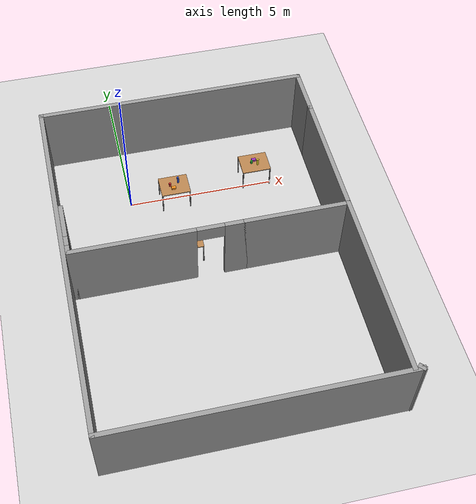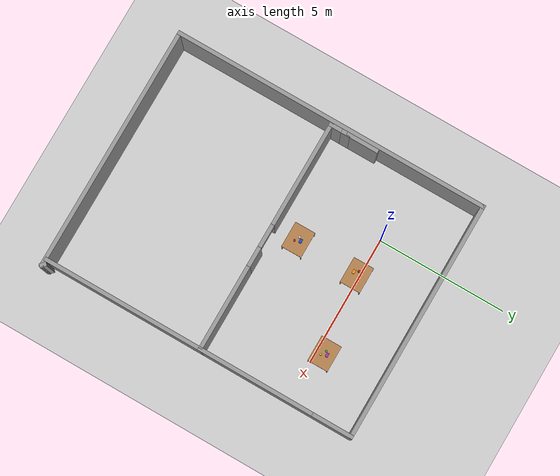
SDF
<sdf version="1.7">
 <world name="default">
  <light name="sun" type="directional">
   <pose>0 0 10 0 -0 0</pose>
   <diffuse>0.8 0.8 0.8 1</diffuse>
   <specular>0.2 0.2 0.2 1</specular>
   <attenuation>
    <range>1000</range>
    <constant>0.9</constant>
    <linear>0.01</linear>
    <quadratic>0.001</quadratic>
   </attenuation>
   <direction>-0.5 0.1 -0.9</direction>
   <spot><inner_angle>0</inner_angle><outer_angle>0</outer_angle><falloff>0</falloff></spot>
  </light>
  <model name="ground_plane">
   <static>1</static>
   <link name="link">
    <collision name="collision">
     <geometry><plane><normal>0 0 1</normal><size>100 100</size></plane></geometry>
     <surface><friction><ode><mu>100</mu><mu2>50</mu2></ode></friction></surface>
    </collision>
    <visual name="visual">
     <cast_shadows>0</cast_shadows>
     <geometry><plane><normal>0 0 1</normal><size>100 100</size></plane></geometry>
     <material>
      <script><uri>file://media/materials/scripts/gazebo.material</uri><name>Gazebo/Grey</name></script>
     </material>
    </visual>
   </link>
  </model>
  <gravity>0 0 -9.8</gravity>
  <magnetic_field>6e-06 2.3e-05 -4.2e-05</magnetic_field>
  <atmosphere type="adiabatic"/>
  <physics type="ode">
   <max_step_size>0.001</max_step_size>
   <real_time_factor>1</real_time_factor>
   <real_time_update_rate>1000</real_time_update_rate>
  </physics>
  <scene><ambient>0.4 0.4 0.4 1</ambient><background>0.7 0.7 0.7 1</background><shadows>1</shadows></scene>
  <audio><device>default</device></audio>
  <spherical_coordinates>
   <surface_model>EARTH_WGS84</surface_model>
   <latitude_deg>0</latitude_deg>
   <longitude_deg>0</longitude_deg>
   <elevation>0</elevation>
   <heading_deg>0</heading_deg>
  </spherical_coordinates>
  <model name="table">
   <static>1</static>
   <link name="link">
    <collision name="surface">
     <pose>0 0 0.8 0 -0 0</pose>
     <geometry><box><size>1 0.8 0.03</size></box></geometry>
    </collision>
    <visual name="visual1">
     <pose>0 0 0.8 0 -0 0</pose>
     <geometry><box><size>1 0.8 0.03</size></box></geometry>
     <material>
      <script><uri>file://media/materials/scripts/gazebo.material</uri><name>Gazebo/Wood</name></script>
     </material>
    </visual>
    <collision name="front_left_leg">
     <pose>0.48 0.38 0.4 0 -0 0</pose>
     <geometry><cylinder><radius>0.02</radius><length>0.8</length></cylinder></geometry>
    </collision>
    <visual name="front_left_leg">
     <pose>0.48 0.38 0.4 0 -0 0</pose>
     <geometry><cylinder><radius>0.02</radius><length>0.8</length></cylinder></geometry>
     <material>
      <script><uri>file://media/materials/scripts/gazebo.material</uri><name>Gazebo/Grey</name></script>
     </material>
    </visual>
    <collision name="front_right_leg">
     <pose>0.48 -0.38 0.4 0 -0 0</pose>
     <geometry><cylinder><radius>0.02</radius><length>0.8</length></cylinder></geometry>
    </collision>
    <visual name="front_right_leg">
     <pose>0.48 -0.38 0.4 0 -0 0</pose>
     <geometry><cylinder><radius>0.02</radius><length>0.8</length></cylinder></geometry>
     <material>
      <script><uri>file://media/materials/scripts/gazebo.material</uri><name>Gazebo/Grey</name></script>
     </material>
    </visual>
    <collision name="back_right_leg">
     <pose>-0.48 -0.38 0.4 0 -0 0</pose>
     <geometry><cylinder><radius>0.02</radius><length>0.8</length></cylinder></geometry>
    </collision>
    <visual name="back_right_leg">
     <pose>-0.48 -0.38 0.4 0 -0 0</pose>
     <geometry><cylinder><radius>0.02</radius><length>0.8</length></cylinder></geometry>
     <material>
      <script><uri>file://media/materials/scripts/gazebo.material</uri><name>Gazebo/Grey</name></script>
     </material>
    </visual>
    <collision name="back_left_leg">
     <pose>-0.48 0.38 0.4 0 -0 0</pose>
     <geometry><cylinder><radius>0.02</radius><length>0.8</length></cylinder></geometry>
    </collision>
    <visual name="back_left_leg">
     <pose>-0.48 0.38 0.4 0 -0 0</pose>
     <geometry><cylinder><radius>0.02</radius><length>0.8</length></cylinder></geometry>
     <material>
      <script><uri>file://media/materials/scripts/gazebo.material</uri><name>Gazebo/Grey</name></script>
     </material>
    </visual>
    <velocity_decay><linear>0</linear><angular>0</angular></velocity_decay>
   </link>
   <pose>1.54752 -0.097405 0 0 -0 0</pose>
  </model>
  <model name="table2">
   <static>1</static>
   <link name="link">
    <collision name="surface">
     <pose>0 0 0.8 0 -0 0</pose>
     <geometry><box><size>1 0.8 0.03</size></box></geometry>
    </collision>
    <visual name="visual1">
     <pose>0 0 0.8 0 -0 0</pose>
     <geometry><box><size>1 0.8 0.03</size></box></geometry>
     <material>
      <script><uri>file://media/materials/scripts/gazebo.material</uri><name>Gazebo/Wood</name></script>
     </material>
    </visual>
    <collision name="leg_fl">
     <pose>0.48 0.38 0.4 0 -0 0</pose>
     <geometry><cylinder><radius>0.02</radius><length>0.8</length></cylinder></geometry>
    </collision>
    <visual name="leg_fl">
     <pose>0.48 0.38 0.4 0 -0 0</pose>
     <geometry><cylinder><radius>0.02</radius><length>0.8</length></cylinder></geometry>
     <material>
      <script><uri>file://media/materials/scripts/gazebo.material</uri><name>Gazebo/Grey</name></script>
     </material>
    </visual>
    <collision name="leg_fr">
     <pose>0.48 -0.38 0.4 0 -0 0</pose>
     <geometry><cylinder><radius>0.02</radius><length>0.8</length></cylinder></geometry>
    </collision>
    <visual name="leg_fr">
     <pose>0.48 -0.38 0.4 0 -0 0</pose>
     <geometry><cylinder><radius>0.02</radius><length>0.8</length></cylinder></geometry>
     <material>
      <script><uri>file://media/materials/scripts/gazebo.material</uri><name>Gazebo/Grey</name></script>
     </material>
    </visual>
    <collision name="leg_bl">
     <pose>-0.48 0.38 0.4 0 -0 0</pose>
     <geometry><cylinder><radius>0.02</radius><length>0.8</length></cylinder></geometry>
    </collision>
    <visual name="leg_bl">
     <pose>-0.48 0.38 0.4 0 -0 0</pose>
     <geometry><cylinder><radius>0.02</radius><length>0.8</length></cylinder></geometry>
     <material>
      <script><uri>file://media/materials/scripts/gazebo.material</uri><name>Gazebo/Grey</name></script>
     </material>
    </visual>
    <collision name="leg_br">
     <pose>-0.48 -0.38 0.4 0 -0 0</pose>
     <geometry><cylinder><radius>0.02</radius><length>0.8</length></cylinder></geometry>
    </collision>
    <visual name="leg_br">
     <pose>-0.48 -0.38 0.4 0 -0 0</pose>
     <geometry><cylinder><radius>0.02</radius><length>0.8</length></cylinder></geometry>
     <material>
      <script><uri>file://media/materials/scripts/gazebo.material</uri><name>Gazebo/Grey</name></script>
     </material>
    </visual>
   </link>
   <pose>4.5 0.3 0 0 -0 0</pose>
  </model>
  <model name="table3">
   <static>1</static>
   <link name="link">
    <collision name="surface">
     <pose>0 0 0.8 0 -0 0</pose>
     <geometry><box><size>1 0.8 0.03</size></box></geometry>
    </collision>
    <visual name="visual1">
     <pose>0 0 0.8 0 -0 0</pose>
     <geometry><box><size>1 0.8 0.03</size></box></geometry>
     <material>
      <script><uri>file://media/materials/scripts/gazebo.material</uri><name>Gazebo/Wood</name></script>
     </material>
    </visual>
    <collision name="leg_fl">
     <pose>0.48 0.38 0.4 0 -0 0</pose>
     <geometry><cylinder><radius>0.02</radius><length>0.8</length></cylinder></geometry>
    </collision>
    <visual name="leg_fl">
     <pose>0.48 0.38 0.4 0 -0 0</pose>
     <geometry><cylinder><radius>0.02</radius><length>0.8</length></cylinder></geometry>
     <material>
      <script><uri>file://media/materials/scripts/gazebo.material</uri><name>Gazebo/Grey</name></script>
     </material>
    </visual>
    <collision name="leg_fr">
     <pose>0.48 -0.38 0.4 0 -0 0</pose>
     <geometry><cylinder><radius>0.02</radius><length>0.8</length></cylinder></geometry>
    </collision>
    <visual name="leg_fr">
     <pose>0.48 -0.38 0.4 0 -0 0</pose>
     <geometry><cylinder><radius>0.02</radius><length>0.8</length></cylinder></geometry>
     <material>
      <script><uri>file://media/materials/scripts/gazebo.material</uri><name>Gazebo/Grey</name></script>
     </material>
    </visual>
    <collision name="leg_bl">
     <pose>-0.48 0.38 0.4 0 -0 0</pose>
     <geometry><cylinder><radius>0.02</radius><length>0.8</length></cylinder></geometry>
    </collision>
    <visual name="leg_bl">
     <pose>-0.48 0.38 0.4 0 -0 0</pose>
     <geometry><cylinder><radius>0.02</radius><length>0.8</length></cylinder></geometry>
     <material>
      <script><uri>file://media/materials/scripts/gazebo.material</uri><name>Gazebo/Grey</name></script>
     </material>
    </visual>
    <collision name="leg_br">
     <pose>-0.48 -0.38 0.4 0 -0 0</pose>
     <geometry><cylinder><radius>0.02</radius><length>0.8</length></cylinder></geometry>
    </collision>
    <visual name="leg_br">
     <pose>-0.48 -0.38 0.4 0 -0 0</pose>
     <geometry><cylinder><radius>0.02</radius><length>0.8</length></cylinder></geometry>
     <material>
      <script><uri>file://media/materials/scripts/gazebo.material</uri><name>Gazebo/Grey</name></script>
     </material>
    </visual>
   </link>
   <pose>1.5 -2.5 0 0 -0 0</pose>
  </model>
  <model name="cup_t1">
   <static>1</static>
   <link name="link">
    <collision name="col">
     <geometry><cylinder><radius>0.04</radius><length>0.12</length></cylinder></geometry>
    </collision>
    <visual name="vis">
     <geometry><cylinder><radius>0.04</radius><length>0.12</length></cylinder></geometry>
     <material>
      <script><uri>file://media/materials/scripts/gazebo.material</uri><name>Gazebo/Red</name></script>
     </material>
    </visual>
   </link>
   <pose>1.4 -0.1 0.875 0 -0 0</pose>
  </model>
  <model name="bottle_t1">
   <static>1</static>
   <link name="link">
    <collision name="col">
     <geometry><cylinder><radius>0.035</radius><length>0.25</length></cylinder></geometry>
    </collision>
    <visual name="vis">
     <geometry><cylinder><radius>0.035</radius><length>0.25</length></cylinder></geometry>
     <material>
      <script><uri>file://media/materials/scripts/gazebo.material</uri><name>Gazebo/Blue</name></script>
     </material>
    </visual>
   </link>
   <pose>1.7 0.0 0.94 0 -0 0</pose>
  </model>
  <model name="box_t1">
   <static>1</static>
   <link name="link">
    <collision name="col"><geometry><box><size>0.15 0.1 0.08</size></box></geometry></collision>
    <visual name="vis">
     <geometry><box><size>0.15 0.1 0.08</size></box></geometry>
     <material>
      <script><uri>file://media/materials/scripts/gazebo.material</uri><name>Gazebo/Orange</name></script>
     </material>
    </visual>
   </link>
   <pose>1.5 -0.25 0.855 0 -0 0</pose>
  </model>
  <model name="cup_t2">
   <static>1</static>
   <link name="link">
    <collision name="col">
     <geometry><cylinder><radius>0.04</radius><length>0.12</length></cylinder></geometry>
    </collision>
    <visual name="vis">
     <geometry><cylinder><radius>0.04</radius><length>0.12</length></cylinder></geometry>
     <material>
      <script><uri>file://media/materials/scripts/gazebo.material</uri><name>Gazebo/Green</name></script>
     </material>
    </visual>
   </link>
   <pose>4.4 0.3 0.875 0 -0 0</pose>
  </model>
  <model name="bottle_t2">
   <static>1</static>
   <link name="link">
    <collision name="col">
     <geometry><cylinder><radius>0.035</radius><length>0.25</length></cylinder></geometry>
    </collision>
    <visual name="vis">
     <geometry><cylinder><radius>0.035</radius><length>0.25</length></cylinder></geometry>
     <material>
      <script><uri>file://media/materials/scripts/gazebo.material</uri><name>Gazebo/Yellow</name></script>
     </material>
    </visual>
   </link>
   <pose>4.6 0.2 0.94 0 -0 0</pose>
  </model>
  <model name="box_t2">
   <static>1</static>
   <link name="link">
    <collision name="col"><geometry><box><size>0.15 0.1 0.08</size></box></geometry></collision>
    <visual name="vis">
     <geometry><box><size>0.15 0.1 0.08</size></box></geometry>
     <material>
      <script><uri>file://media/materials/scripts/gazebo.material</uri><name>Gazebo/Purple</name></script>
     </material>
    </visual>
   </link>
   <pose>4.5 0.4 0.855 0 -0 0</pose>
  </model>
  <model name="cup_t3">
   <static>1</static>
   <link name="link">
    <collision name="col">
     <geometry><cylinder><radius>0.04</radius><length>0.12</length></cylinder></geometry>
    </collision>
    <visual name="vis">
     <geometry><cylinder><radius>0.04</radius><length>0.12</length></cylinder></geometry>
     <material>
      <script><uri>file://media/materials/scripts/gazebo.material</uri><name>Gazebo/White</name></script>
     </material>
    </visual>
   </link>
   <pose>1.4 -2.5 0.875 0 -0 0</pose>
  </model>
  <model name="bottle_t3">
   <static>1</static>
   <link name="link">
    <collision name="col">
     <geometry><cylinder><radius>0.035</radius><length>0.25</length></cylinder></geometry>
    </collision>
    <visual name="vis">
     <geometry><cylinder><radius>0.035</radius><length>0.25</length></cylinder></geometry>
     <material>
      <script><uri>file://media/materials/scripts/gazebo.material</uri><name>Gazebo/Red</name></script>
     </material>
    </visual>
   </link>
   <pose>1.6 -2.6 0.94 0 -0 0</pose>
  </model>
  <model name="box_t3">
   <static>1</static>
   <link name="link">
    <collision name="col"><geometry><box><size>0.15 0.1 0.08</size></box></geometry></collision>
    <visual name="vis">
     <geometry><box><size>0.15 0.1 0.08</size></box></geometry>
     <material>
      <script><uri>file://media/materials/scripts/gazebo.material</uri><name>Gazebo/Blue</name></script>
     </material>
    </visual>
   </link>
   <pose>1.5 -2.4 0.855 0 -0 0</pose>
  </model>
  <model name="Untitled_0">
   <pose>2.1718 -3.55661 0 0 -0 0</pose>
   <link name="Wall_10">
    <collision name="Wall_10_Collision">
     <geometry><box><size>1.25 0.15 2.5</size></box></geometry>
     <pose>0 0 1.25 0 -0 0</pose>
    </collision>
    <visual name="Wall_10_Visual">
     <pose>0 0 1.25 0 -0 0</pose>
     <geometry><box><size>1.25 0.15 2.5</size></box></geometry>
     <material>
      <script><uri>file://media/materials/scripts/gazebo.material</uri><name>Gazebo/Grey</name></script>
      <ambient>1 1 1 1</ambient>
     </material>
     <meta><layer>0</layer></meta>
    </visual>
    <pose>-4.54053 1.36553 0 0 -0 -1.5708</pose>
   </link>
   <link name="Wall_11">
    <collision name="Wall_11_Collision">
     <geometry><box><size>0.5 0.15 2.5</size></box></geometry>
     <pose>0 0 1.25 0 -0 0</pose>
    </collision>
    <visual name="Wall_11_Visual">
     <pose>0 0 1.25 0 -0 0</pose>
     <geometry><box><size>0.5 0.15 2.5</size></box></geometry>
     <material>
      <script><uri>file://media/materials/scripts/gazebo.material</uri><name>Gazebo/Grey</name></script>
      <ambient>1 1 1 1</ambient>
     </material>
     <meta><layer>0</layer></meta>
    </visual>
    <pose>-4.54053 0.640533 0 0 -0 -1.5708</pose>
   </link>
   <link name="Wall_12">
    <collision name="Wall_12_Collision">
     <geometry><box><size>0.5 0.15 2.5</size></box></geometry>
     <pose>0 0 1.25 0 -0 0</pose>
    </collision>
    <visual name="Wall_12_Visual">
     <pose>0 0 1.25 0 -0 0</pose>
     <geometry><box><size>0.5 0.15 2.5</size></box></geometry>
     <material>
      <script><uri>file://media/materials/scripts/gazebo.material</uri><name>Gazebo/Grey</name></script>
      <ambient>1 1 1 1</ambient>
     </material>
     <meta><layer>0</layer></meta>
    </visual>
    <pose>-4.54053 0.290533 0 0 -0 -1.5708</pose>
   </link>
   <link name="Wall_13">
    <pose>-1.74053 0.115533 0 0 -0 0</pose>
    <visual name="Wall_13_Visual_0">
     <pose>-0.829296 0 1.25 0 -0 0</pose>
     <geometry><box><size>4.09141 0.15 2.5</size></box></geometry>
     <material>
      <script><uri>file://media/materials/scripts/gazebo.material</uri><name>Gazebo/Grey</name></script>
      <ambient>1 1 1 1</ambient>
     </material>
     <meta><layer>0</layer></meta>
    </visual>
    <collision name="Wall_13_Collision_0">
     <geometry><box><size>4.09141 0.15 2.5</size></box></geometry>
     <pose>-0.829296 0 1.25 0 -0 0</pose>
    </collision>
    <visual name="Wall_13_Visual_1">
     <pose>2.4957 0 1.25 0 -0 0</pose>
     <geometry><box><size>0.758591 0.15 2.5</size></box></geometry>
     <material>
      <script><uri>file://media/materials/scripts/gazebo.material</uri><name>Gazebo/Grey</name></script>
      <ambient>1 1 1 1</ambient>
     </material>
     <meta><layer>0</layer></meta>
    </visual>
    <collision name="Wall_13_Collision_1">
     <geometry><box><size>0.758591 0.15 2.5</size></box></geometry>
     <pose>2.4957 0 1.25 0 -0 0</pose>
    </collision>
    <visual name="Wall_13_Visual_2">
     <pose>1.66641 0 2.25 0 -0 0</pose>
     <geometry><box><size>0.9 0.15 0.5</size></box></geometry>
     <material>
      <script><uri>file://media/materials/scripts/gazebo.material</uri><name>Gazebo/Grey</name></script>
      <ambient>1 1 1 1</ambient>
     </material>
     <meta><layer>0</layer></meta>
    </visual>
    <collision name="Wall_13_Collision_2">
     <geometry><box><size>0.9 0.15 0.5</size></box></geometry>
     <pose>1.66641 0 2.25 0 -0 0</pose>
    </collision>
   </link>
   <link name="Wall_18">
    <collision name="Wall_18_Collision">
     <geometry><box><size>3.5 0.15 2.5</size></box></geometry>
     <pose>0 0 1.25 0 -0 0</pose>
    </collision>
    <visual name="Wall_18_Visual">
     <pose>0 0 1.25 0 -0 0</pose>
     <geometry><box><size>3.5 0.15 2.5</size></box></geometry>
     <material>
      <script><uri>file://media/materials/scripts/gazebo.material</uri><name>Gazebo/Grey</name></script>
      <ambient>1 1 1 1</ambient>
     </material>
     <meta><layer>0</layer></meta>
    </visual>
    <pose>2.73447 0.115533 0 0 -0 0</pose>
   </link>
   <link name="Wall_19">
    <collision name="Wall_19_Collision">
     <geometry><box><size>4.5 0.15 2.5</size></box></geometry>
     <pose>0 0 1.25 0 -0 0</pose>
    </collision>
    <visual name="Wall_19_Visual">
     <pose>0 0 1.25 0 -0 0</pose>
     <geometry><box><size>4.5 0.15 2.5</size></box></geometry>
     <material>
      <script><uri>file://media/materials/scripts/gazebo.material</uri><name>Gazebo/Grey</name></script>
      <ambient>1 1 1 1</ambient>
     </material>
     <meta><layer>0</layer></meta>
    </visual>
    <pose>4.40947 2.29053 0 0 -0 1.5708</pose>
   </link>
   <link name="Wall_20">
    <collision name="Wall_20_Collision">
     <geometry><box><size>0.15 0.15 2.5</size></box></geometry>
     <pose>0 0 1.25 0 -0 0</pose>
    </collision>
    <visual name="Wall_20_Visual">
     <pose>0 0 1.25 0 -0 0</pose>
     <geometry><box><size>0.15 0.15 2.5</size></box></geometry>
     <material>
      <script><uri>file://media/materials/scripts/gazebo.material</uri><name>Gazebo/Grey</name></script>
      <ambient>1 1 1 1</ambient>
     </material>
     <meta><layer>0</layer></meta>
    </visual>
    <pose>4.40947 4.46553 0 0 -0 0</pose>
   </link>
   <link name="Wall_25">
    <collision name="Wall_25_Collision">
     <geometry><box><size>1.75 0.15 2.5</size></box></geometry>
     <pose>0 0 1.25 0 -0 0</pose>
    </collision>
    <visual name="Wall_25_Visual">
     <pose>0 0 1.25 0 -0 0</pose>
     <geometry><box><size>1.75 0.15 2.5</size></box></geometry>
     <material>
      <script><uri>file://media/materials/scripts/gazebo.material</uri><name>Gazebo/Grey</name></script>
      <ambient>1 1 1 1</ambient>
     </material>
     <meta><layer>0</layer></meta>
    </visual>
    <pose>4.40947 5.26553 0 0 -0 1.5708</pose>
   </link>
   <link name="Wall_26">
    <collision name="Wall_26_Collision">
     <geometry><box><size>9.25 0.15 2.5</size></box></geometry>
     <pose>0 0 1.25 0 -0 0</pose>
    </collision>
    <visual name="Wall_26_Visual">
     <pose>0 0 1.25 0 -0 0</pose>
     <geometry><box><size>9.25 0.15 2.5</size></box></geometry>
     <material>
      <script><uri>file://media/materials/scripts/gazebo.material</uri><name>Gazebo/Grey</name></script>
      <ambient>1 1 1 1</ambient>
     </material>
     <meta><layer>0</layer></meta>
    </visual>
    <pose>-0.140533 6.06553 0 0 -0 3.14159</pose>
   </link>
   <link name="Wall_27">
    <collision name="Wall_27_Collision">
     <geometry><box><size>12.25 0.15 2.5</size></box></geometry>
     <pose>0 0 1.25 0 -0 0</pose>
    </collision>
    <visual name="Wall_27_Visual">
     <pose>0 0 1.25 0 -0 0</pose>
     <geometry><box><size>12.25 0.15 2.5</size></box></geometry>
     <material>
      <script><uri>file://media/materials/scripts/gazebo.material</uri><name>Gazebo/Grey</name></script>
      <ambient>1 1 1 1</ambient>
     </material>
     <meta><layer>0</layer></meta>
    </visual>
    <pose>-4.69053 0.015533 0 0 -0 -1.5708</pose>
   </link>
   <link name="Wall_28">
    <collision name="Wall_28_Collision">
     <geometry><box><size>9.5 0.15 2.5</size></box></geometry>
     <pose>0 0 1.25 0 -0 0</pose>
    </collision>
    <visual name="Wall_28_Visual">
     <pose>0 0 1.25 0 -0 0</pose>
     <geometry><box><size>9.5 0.15 2.5</size></box></geometry>
     <material>
      <script><uri>file://media/materials/scripts/gazebo.material</uri><name>Gazebo/Grey</name></script>
      <ambient>1 1 1 1</ambient>
     </material>
     <meta><layer>0</layer></meta>
    </visual>
    <pose>-0.015533 -6.03447 0 0 -0 0</pose>
   </link>
   <link name="Wall_29">
    <collision name="Wall_29_Collision">
     <geometry><box><size>0.25 0.15 2.5</size></box></geometry>
     <pose>0 0 1.25 0 -0 0</pose>
    </collision>
    <visual name="Wall_29_Visual">
     <pose>0 0 1.25 0 -0 0</pose>
     <geometry><box><size>0.25 0.15 2.5</size></box></geometry>
     <material>
      <script><uri>file://media/materials/scripts/gazebo.material</uri><name>Gazebo/Grey</name></script>
      <ambient>1 1 1 1</ambient>
     </material>
     <meta><layer>0</layer></meta>
    </visual>
    <pose>4.62411 -5.99911 0 0 -0 2.35619</pose>
   </link>
   <link name="Wall_31">
    <collision name="Wall_31_Collision">
     <geometry><box><size>6.25 0.15 2.5</size></box></geometry>
     <pose>0 0 1.25 0 -0 0</pose>
    </collision>
    <visual name="Wall_31_Visual">
     <pose>0 0 1.25 0 -0 0</pose>
     <geometry><box><size>6.25 0.15 2.5</size></box></geometry>
     <material>
      <script><uri>file://media/materials/scripts/gazebo.material</uri><name>Gazebo/Grey</name></script>
      <ambient>1 1 1 1</ambient>
     </material>
     <meta><layer>0</layer></meta>
    </visual>
    <pose>4.40947 -2.93447 0 0 -0 -1.5708</pose>
   </link>
   <static>1</static>
  </model>
 </world>
</sdf>
